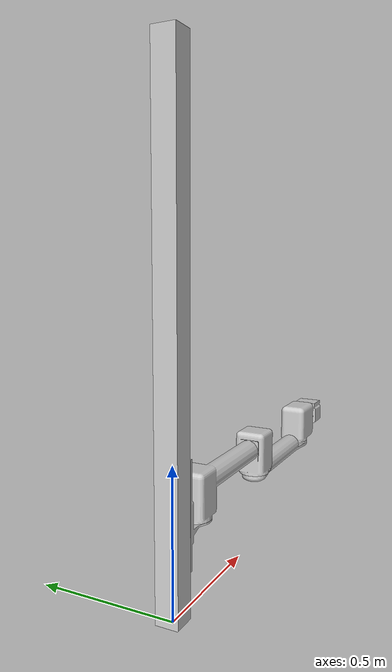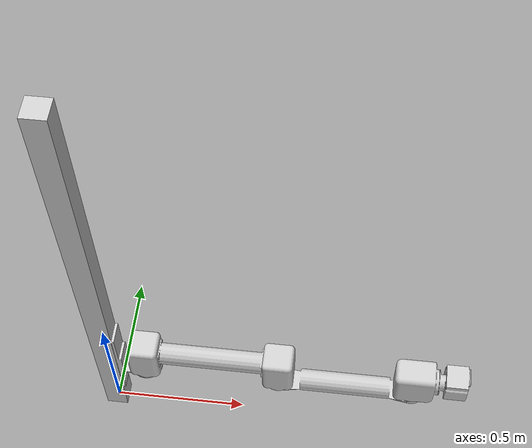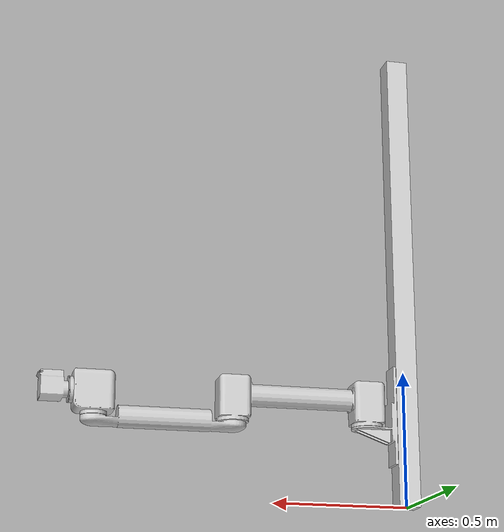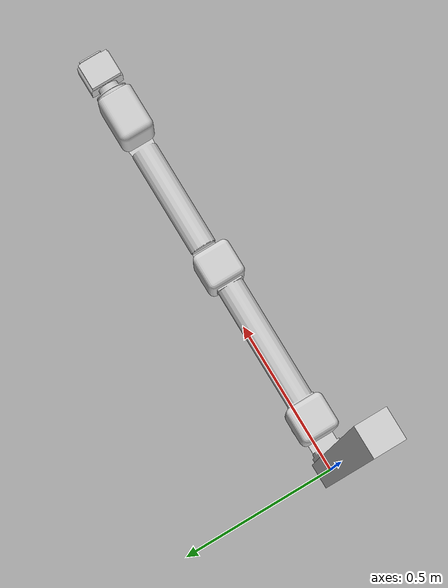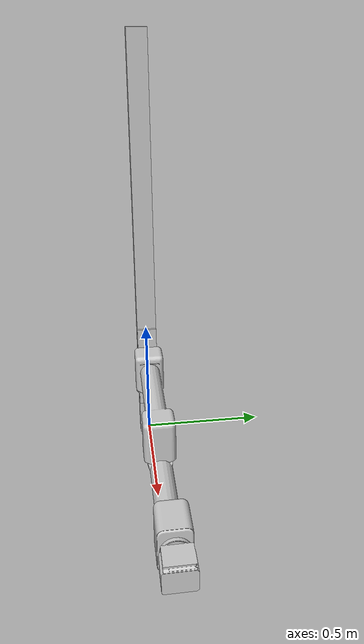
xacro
<?xml version="1.0"?>
<robot xmlns:xacro="http://www.ros.org/wiki/xacro" name="baker" >

  <!-- common stuff -->
  <xacro:include filename="$(find cob_description)/urdf/common.xacro" />
  <xacro:include filename="$(find cob_description)/urdf/materials.urdf.xacro" />

  <!-- baker_arm -->
  <xacro:include filename="$(find cob_description)/urdf/baker_arm/baker_arm.urdf.xacro" />

  <!-- Used for fixing robot to Gazebo -->
  <link name="world">
    <origin xyz="0 0 0" rpy="0 0 0"/>
  </link>

  <xacro:baker name="arm" parent="world">
    <origin xyz="0 0 0" rpy="0 0 0" />
  </xacro:baker>

</robot>

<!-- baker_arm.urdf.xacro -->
<robot xmlns:xacro="http://www.ros.org/wiki/xacro">

  <xacro:include filename="$(find cob_description)/urdf/common.xacro" />
  <xacro:include filename="$(find cob_description)/urdf/baker_arm/baker.transmission.xacro" />
  <xacro:include filename="$(find cob_description)/urdf/baker_arm/baker.gazebo.xacro" />

  <xacro:macro name="baker_robot" params="prefix">

    <material name="blue">
      <color rgba="0.1 0.1 0.6 1"/>
    </material>

	<link name="${prefix}base_link">
	    <collision>
              <origin xyz="0 0 0.87" rpy="0 0 0"/>
	      <geometry>
	        <box size="0.08 0.08 1.74"/>
	      </geometry>
	    </collision>
	    <visual>
              <origin xyz="0 0 0.87" rpy="0 0 0"/>
	      <geometry>
	        <box size="0.08 0.08 1.74"/>
	      </geometry>
              <material name="IPA/LightGrey"/>
	    </visual>
	    <inertial>
              <origin xyz="0 0 0.87" rpy="0 0 0"/>
	      <mass value="1"/>
	      <inertia
	        ixx="1.0" ixy="0.0" ixz="0.0"
	        iyy="1.0" iyz="0.0"
	        izz="1.0"/>
	    </inertial>
    </link>

    <joint name="${prefix}joint_1" type="prismatic">
      <!--limit effort="500" velocity="0.15" lower="-0.0" upper="0.7" /-->
      <limit effort="0.20" velocity="0.20" lower="-0.1" upper="1.0" /> <!-- in meter -->
      <parent link="${prefix}base_link"/>
      <child link="${prefix}flange"/>
      <!-- z:= -0.09 calculated with the same dimension as motor fitting into linear axis
      making sure eef pose into rviz and manulally mesaured values remain same -->
      <!--origin xyz="0.041 0 -0.09" rpy="0 0 ${M_PI}"/-->
      <origin xyz="0.041 0 0.285" rpy="0 0 ${M_PI}"/> <!-- with homing methods -->
      <!--origin xyz="0.041 0 0.285" rpy="0 0 ${M_PI}"/-->    <!-- without homing methods -->
      <axis xyz="0 0 1"/>
    </joint>

    <link name="${prefix}flange">
      <xacro:default_inertial/>
      <visual>
        <origin xyz="0.0 0 0.0" rpy="0 0 0"/>
        <geometry>
          <mesh filename="package://cob_description/meshes/baker_arm/Flange_red2.STL" />
        </geometry>
        <material name="IPA/LightGrey"/>
      </visual>
      <collision>
        <origin xyz="0 0 0" rpy="0 0 0" />
        <geometry>
          <mesh filename="package://cob_description/meshes/baker_arm/Flange_red2.STL" />
        </geometry>
      </collision>
    </link>

    <joint name="${prefix}joint_2" type="revolute">
      <limit effort="0.50" velocity="0.50" lower="-1.57" upper="1.57" />
      <parent link="${prefix}flange"/>
      <child link="${prefix}link1"/>
      <!--origin xyz="-0.103 0 0.001" rpy="${M_PI} 0 0"/-->
      <origin xyz="-0.103 0 0.001" rpy="0 0 0"/>
      <axis xyz="0 0 1"/>
    </joint>

    <link name="${prefix}link1">
      <xacro:default_inertial/>
      <visual>
        <origin xyz="0.0 0 0.0" rpy="0 0 0"/>
        <geometry>
          <mesh filename="package://cob_description/meshes/baker_arm/Link1_red2.STL" />
        </geometry>
        <material name="IPA/LightGrey"/>
      </visual>
      <collision>
        <origin xyz="0 0 0" rpy="0 0 0" />
        <geometry>
          <mesh filename="package://cob_description/meshes/baker_arm/Link1_red2.STL" />
        </geometry>
      </collision>
    </link>

    <joint name="${prefix}joint_3" type="revolute">
      <limit effort="0.50" velocity="0.50" lower="-2.50" upper="2.50" />
      <parent link="${prefix}link1"/>
      <child link="${prefix}link2"/>
      <!--origin xyz="-0.5 0 -0.001" rpy="-${M_PI} 0 0"/-->
      <origin xyz="-0.5 0 -0.001" rpy="0 0 0"/>
      <axis xyz="0 0 1"/>
    </joint>

    <link name="${prefix}link2">
      <xacro:default_inertial/>
      <visual>
        <origin xyz="0.0 0 0.0" rpy="0 0 0"/>
        <geometry>
          <mesh filename="package://cob_description/meshes/baker_arm/Link2_red2.STL" />
        </geometry>
        <material name="IPA/LightGrey"/>
      </visual>
      <collision>
        <origin xyz="0 0 0" rpy="0 0 0" />
        <geometry>
          <mesh filename="package://cob_description/meshes/baker_arm/Link2_red2.STL" />
        </geometry>
      </collision>
    </link>

    <joint name="${prefix}joint_4" type="revolute">
      <limit effort="0.50" velocity="0.50" lower="-2.5" upper="2.5" />
      <parent link="${prefix}link2"/>
      <child link="${prefix}link3"/>
      <!--origin xyz="-0.5 0 0.001" rpy="${M_PI} 0 0"/-->
      <!-- origin xyz="-0.5 0 0.16" rpy="0 0 0"/--> <!-- opposite direction-->
      <origin xyz="-0.5 0 0.001" rpy="0 0 0"/>
      <axis xyz="0 0 1"/>
    </joint>

    <link name="${prefix}link3">
      <xacro:default_inertial/>
      <visual>
        <origin xyz="0.0 0 0.0" rpy="0 0 0"/>
        <geometry>
          <mesh filename="package://cob_description/meshes/baker_arm/Joint45_red2.STL" />
        </geometry>
        <material name="IPA/LightGrey"/>
      </visual>
      <collision>
        <origin xyz="0 0 0" rpy="0 0 0" />
        <geometry>
          <mesh filename="package://cob_description/meshes/baker_arm/Joint45_red2.STL" />
        </geometry>
      </collision>
    </link>

    <joint name="${prefix}joint_5" type="revolute">
      <limit effort="0.50" velocity="0.50" lower="-${M_PI}" upper="${M_PI}" />
      <parent link="${prefix}link3"/>
      <child link="${prefix}gripper"/>
      <origin xyz="-0.09 0 0.089" rpy="0 -${M_PI/2} 0"/>
      <axis xyz="0 0 1"/>
    </joint>

    <link name="${prefix}gripper">
      <xacro:default_inertial/>
      <visual>
        <origin xyz="0.0 0 0.0" rpy="0 0 -${M_PI/2}"/>
        <geometry>
          <mesh filename="package://cob_description/meshes/baker_arm/Gripper_red2.STL" />
        </geometry>
        <material name="IPA/LightGrey"/>
      </visual>
      <collision>
        <origin xyz="0 0 0" rpy="0 0 0" />
        <geometry>
          <mesh filename="package://cob_description/meshes/baker_arm/Gripper_red2.STL" />
        </geometry>
      </collision>
    </link>

    <xacro:baker_arm_transmission prefix="${prefix}" />
    <xacro:baker_arm_gazebo prefix="${prefix}" />

  </xacro:macro>

  <xacro:macro name="baker" params="parent name">

    <!-- mount the arm to the robot -->
    <joint name="${name}_base_joint" type="fixed" >
      <parent link="${parent}" />
      <child link="${name}_base_link" />
    </joint>

    <!-- include baker robot -->
    <xacro:baker_robot prefix="${name}_"/>

    <!-- ros_control plugin -->
    <gazebo>
      <plugin name="ros_control" filename="libhwi_switch_gazebo_ros_control.so">
        <robotNamespace>${name}</robotNamespace>
        <filterJointsParam>joint_names</filterJointsParam>
      </plugin>
    </gazebo>

  </xacro:macro>

</robot>
